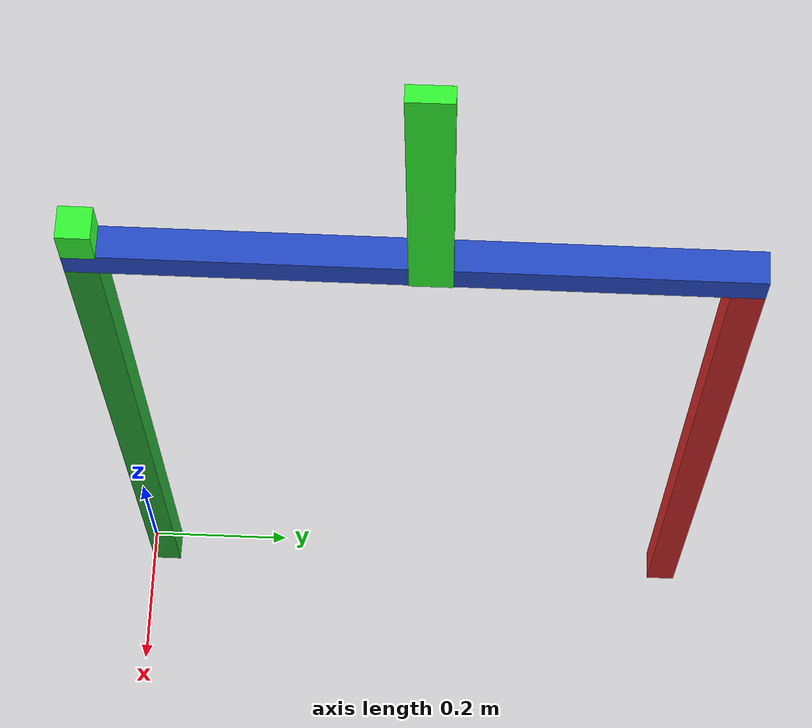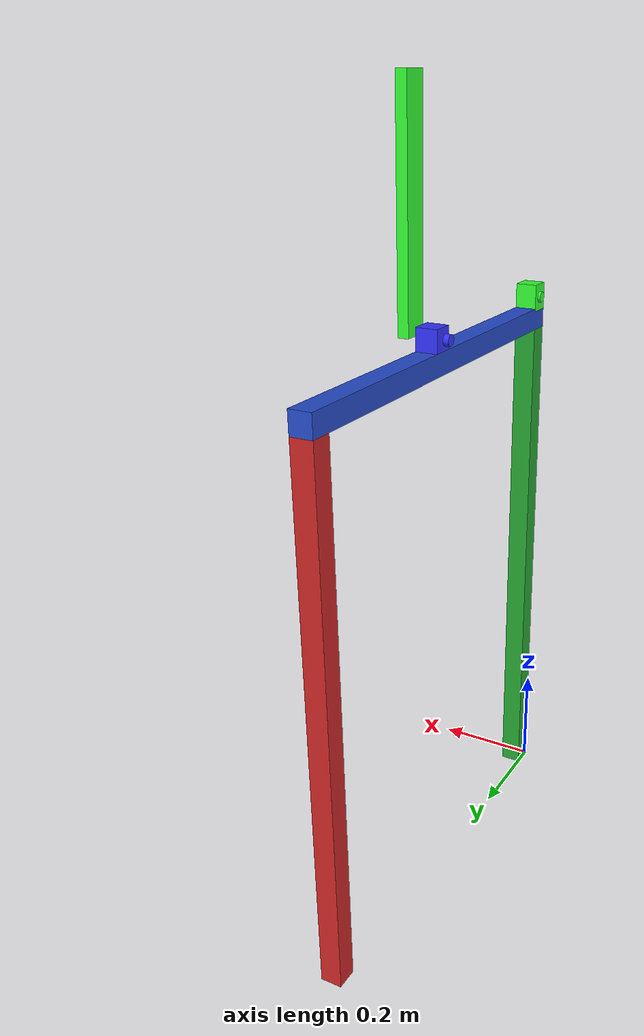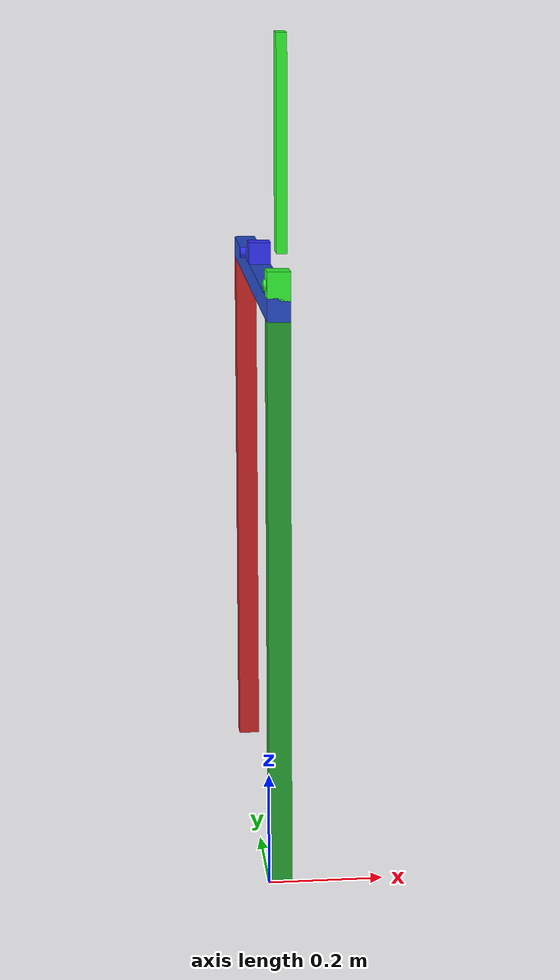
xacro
<?xml version="1.0"?>
<robot xmlns:xacro="http://www.ros.org/wiki/xacro" name="pendulum_stabilization">

    <!-- include              -->
    <material name="white">
        <color rgba="1 1 1 1"/>
    </material>

    <material name="orange">
        <color rgba="1 0.3 0.1 1"/>
    </material>

    <material name="blue">
        <color rgba="0.2 0.2 1 1"/>
    </material>

    <material name="green">
        <color rgba="0.2 1 0.2 1"/>
    </material>

    <xacro:macro name="inertial_cuboid" params="mass width height depth *origin">
        <inertial>
            <xacro:insert_block name="origin"/>
            <mass value="${mass}"/>
            <inertia ixx="${(1/12) * mass * (height*height + depth*depth)}" ixy="0.0" ixz="0.0"
                    iyy="${(1/12) * mass * (width*width + depth*depth)}" iyz="0.0"
                    izz="${(1/12) * mass * (width*width + height*height)}" />
        </inertial>
    </xacro:macro>

    <xacro:macro name="inertial_slender" params="mass length *origin">
        <inertial>
            <xacro:insert_block name="origin"/>
            <mass value="${mass}"/>
            <inertia ixx="${(1/12) * mass * (length*length)}" ixy="0.0" ixz="0.0"
                    iyy="${(1/12) * mass * (length*length)}" iyz="0.0"
                    izz="${(1/12) * mass * (0.01*0.01)}" />
        </inertial>
    </xacro:macro>

    <xacro:macro name="inertial_cylinder" params="mass radius height *origin">
        <inertial>
            <xacro:insert_block name="origin"/>
            <mass value="${mass}"/>
            <inertia ixx="${(1/12) * mass * (3*radius*radius + height*height)}" ixy="0.0" ixz="0.0"
                    iyy="${(1/12) * mass * (3*radius*radius + height*height)}" iyz="0.0"
                    izz="${(1/2) * mass * (radius*radius)}" />
        </inertial>
    </xacro:macro>
    <!-- include                        -->

    <link name="world" />

    <joint name="joint_base_to_column1" type="fixed">
        <parent link="world"/>
        <child link="link_column1"/>
        <origin xyz="0.0 0.0 0.0" rpy="0.0 0.0 0.0"/>
    </joint>

    <link name="link_column1">
        <visual>
            <origin xyz="0.02 0.02 0.5" rpy="0.0 0.0 0.0"/>
            <geometry>
                <box size="0.04 0.04 1"/>
            </geometry>
        </visual>

        <collision>
            <origin xyz="0.02 0.02 0.5" rpy="0.0 0.0 0.0"/>
            <geometry>
                <box size="0.04 0.04 1"/>
            </geometry>
        </collision>

        <xacro:inertial_cuboid mass="1" width="0.04" height="0.04" depth="1">
            <origin xyz="0.02 0.02 0.5" rpy="0 0 0"/>
        </xacro:inertial_cuboid>

    </link>

    <joint name="joint_connect_sliding_bar1" type="fixed">
        <parent link="link_column1"/>
        <child link="link_sliding_bar"/>
        <origin xyz="0.02 0 1"/>
    </joint>

    <link name="link_sliding_bar">
        <visual>
            <geometry>
                <box size="0.04 0.8 0.04"/>
            </geometry>
            <origin xyz="0 0.4 0.02" rpy="0 0.0 0.0"/>
        </visual>
        <collision>
            <geometry>
                <box size="0.04 0.8 0.04"/>
            </geometry>
            <origin xyz="0 0.4 0.02" rpy="0 0.0 0.0"/>
        </collision>
        <xacro:inertial_cuboid mass="1" width="0.04" height="0.8" depth="0.04">
            <origin xyz="0 0.4 0.02" rpy="0 0.0 0.0"/>
        </xacro:inertial_cuboid>
    </link>

    <joint name="joint_bar2_to_base" type="fixed">
        <parent link="world"/>
        <child link="link_column2"/>
        <origin xyz="0 0.78 0"/>
    </joint>

    <link name="link_column2">
        <visual>
            <geometry>
                <box size="0.04 0.04 1"/>
            </geometry>
            <origin xyz="0.02 0 0.5" rpy="0.0 0.0 0.0"/>
        </visual>
        <collision>
            <geometry>
                <box size="0.04 0.04 1"/>
            </geometry>
            <origin xyz="0.02 0 0.5" rpy="0.0 0.0 0.0"/>
        </collision>

        <xacro:inertial_cuboid mass="1" width="0.04" height="0.04" depth="1">
            <origin xyz="0.02 0 0.5" rpy="0.0 0.0 0.0"/>
        </xacro:inertial_cuboid>
    </link>

    <joint name="joint_column1_motor" type="fixed">
        <parent link="link_column1"/>
        <child link="link_motor"/>
        <origin xyz="0.02 0.02 1.04"/>
    </joint>

    <!-- right now just for pulley is not move, if want to pulley moving, separate it -->
    <link name="link_motor">
        <visual> <!-- motor body-->
            <geometry>
                <box size="0.04 0.04 0.05"/>
            </geometry>
            <origin xyz="0 0 0.02" rpy="0.0 0.0 0.0"/>
            <material name="green"/>
        </visual>
        <visual> <!-- pulley-->
            <geometry>
                <cylinder radius="0.01" length="0.01"/>
            </geometry>
            <origin xyz="-0.02 0.0 0.02" rpy="0.0 -1.57075 0.0"/>
            <material name="green"/>
        </visual>

        <collision>
            <geometry>
                <box size="0.04 0.04 0.05"/>
            </geometry>
            <origin xyz="0 0 0.02" rpy="0.0 0.0 0.0"/>
        </collision>
        <collision>
            <geometry>
                <cylinder radius="0.01" length="0.01"/>
            </geometry>
            <origin xyz="-0.02 0.0 0.02" rpy="0.0 -1.57075 0.0"/>
        </collision>

        <xacro:inertial_cuboid mass="0.2" width="0.04" height="0.04" depth="0.05">
            <origin xyz="0 0 0.02" rpy="0.0 0.0 0.0"/>
        </xacro:inertial_cuboid>
    </link>

    <joint name="joint_encorder_motor" type="prismatic">
        <parent link="link_motor"/>
        <child link="link_encorder"/>
        <origin xyz="0 0.4 0.02"/>
        <axis xyz="0.0 1 0.0"/>
        <limit lower="-0.35" upper="0.3" effort="100.0" velocity="0.2"/>
        <dynamics damping="0.01" friction="0.05"/>
    </joint>

    <link name="link_encorder">
        <visual> <!-- body-->
            <geometry>
                <box size="0.04 0.04 0.04"/>
            </geometry>
            <origin xyz="0 0 0" rpy="0.0 0.0 0.0"/>
            <material name="blue" />
        </visual>

        <visual name="pulley_of_encoder">
            <geometry>
                <cylinder radius="0.01" length="0.01"/>
            </geometry>
            <origin xyz="-0.03 0 0" rpy="0.0 -1.57075 0.0"/>
            <material name="blue" />
        </visual>

        <visual name="shaft_connect_pendulum">
            <geometry>
                <cylinder radius="0.005" length="0.01"/>
            </geometry>
            <origin xyz="0.01 0 0" rpy="0.0 1.57075 0.0"/>
            <material name="blue" />
        </visual>

        <collision>
            <geometry>
                <box size="0.04 0.04 0.04"/>
            </geometry>
            <origin xyz="0 0 0" rpy="0.0 0.0 0.0"/>
        </collision>
        <collision>
            <geometry>
                <cylinder radius="0.01" length="0.01"/>
            </geometry>
            <origin xyz="-0.03 0 0" rpy="0.0 -1.57075 0.0"/>
        </collision>
        <collision>
            <geometry>
                <cylinder radius="0.005" length="0.01"/>
            </geometry>
            <origin xyz="0.01 0 0" rpy="0.0 1.57075 0.0"/>
        </collision>

        <xacro:inertial_cuboid mass="0.2" width="0.04" height="0.04" depth="0.04">
            <origin xyz="0 0 0.02" rpy="0.0 0.0 0.0"/>
        </xacro:inertial_cuboid>
    </link>

    <joint name="joint_encorder_pendulum" type="continuous">
        <parent link="link_encorder"/>
        <child link="link_pendulum"/>
        <origin xyz="0.03 0 0" rpy="0.01 0.0 0.0"/>
        <axis xyz="1 0.0 0.0"/>
        <dynamics damping="0.0001" friction="0.002"/>
    </joint>

    <link name="link_pendulum">
        <visual>
            <geometry>
                <box size="0.02 0.05 0.4"/>
            </geometry>
            <origin xyz="0.01 0 0.2" rpy="0.0 0.0 0.0"/>
            <material name="green" />
        </visual>

        <collision>
            <geometry>
                <box size="0.02 0.05 0.4"/>
            </geometry>
            <origin xyz="0.01 0 0.2" rpy="0.0 0.0 0.0"/>
        </collision>

        <xacro:inertial_slender mass="0.3" length="0.4">
            <origin xyz="0.01 0 0.2" rpy="0.0 0.0 0.0"/>
        </xacro:inertial_slender>
    </link>

<!-- Gazebo -->

    <gazebo reference="link_column1">
        <material>Gazebo/Green</material>
    </gazebo>

    <gazebo reference="link_sliding_bar">
        <material>Gazebo/Blue</material>
    </gazebo>

    <gazebo reference="link_column2">
        <material>Gazebo/Red</material>
    </gazebo>

    <gazebo reference="link_motor">
        <material>Gazebo/Green</material>
    </gazebo>

    <gazebo reference="link_encorder">
        <material>Gazebo/Blue</material>
    </gazebo>

    <gazebo reference="link_pendulum">
        <material>Gazebo/Red</material>
    </gazebo>

    <!-- create plugin           -->

    <gazebo>
        <plugin filename="libgz_ros2_control-system.so" name="gz_ros2_control::GazeboSimROS2ControlPlugin">
            <parameters>$(find description_robot)/config/cart_controller.yaml</parameters>
        </plugin>
    </gazebo>

    <!-- https://control.ros.org/rolling/doc/gz_ros2_control/doc/index.html -->
    <ros2_control name="GazeboSimSystem" type="system">
        <hardware>
            <plugin>gz_ros2_control/GazeboSimSystem</plugin>
        </hardware>
        <joint name="joint_encorder_motor">
            <command_interface name="effort">
                <param name="min">-100</param>
                <param name="max">100</param>
            </command_interface>
            <state_interface name="position"/>
            <state_interface name="velocity"/>
            <state_interface name="effort"/>
        </joint>

        <joint name="joint_encorder_pendulum">
            <state_interface name="position"/>
            <state_interface name="velocity"/>
            <state_interface name="effort"/>
        </joint>
    </ros2_control>

</robot>
